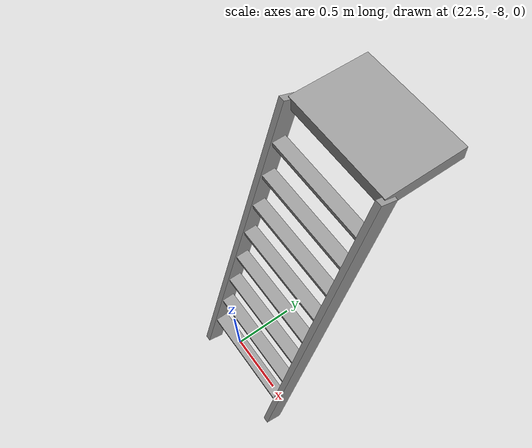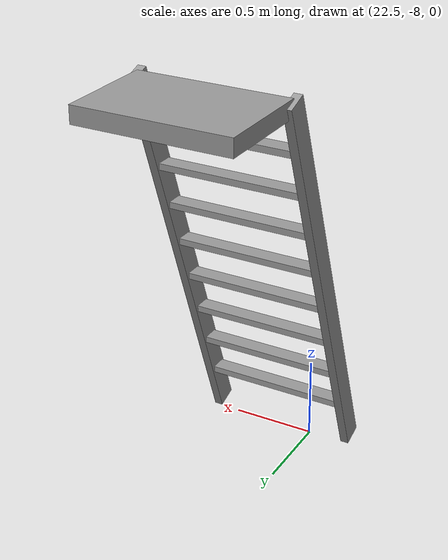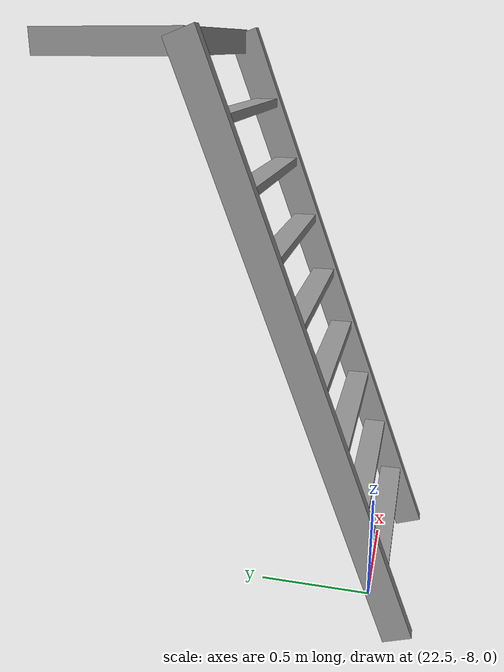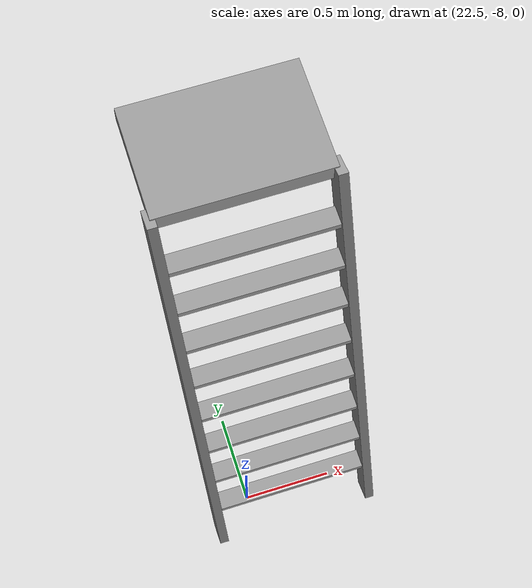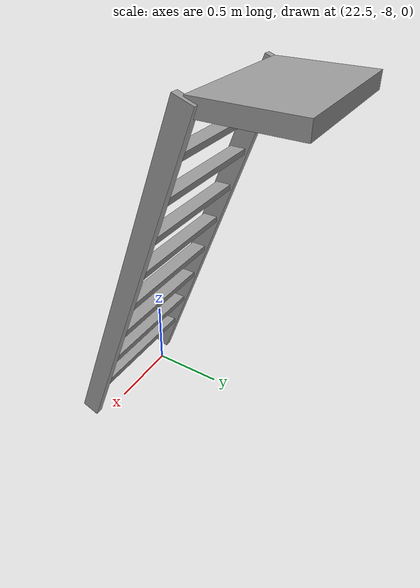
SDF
<sdf version="1.6">
 <world name="factory">
  <physics name="default_physics" default="0" type="ode">
   <max_step_size>0.001</max_step_size>
   <real_time_factor>1</real_time_factor>
   <real_time_update_rate>1000</real_time_update_rate>
  </physics>
  <gravity>0 0 -9.8</gravity>
  <magnetic_field>6e-06 2.3e-05 -4.2e-05</magnetic_field>
  <atmosphere type="adiabatic"/>
  <scene><ambient>0.4 0.4 0.4 1</ambient><background>0.7 0.7 0.7 1</background><shadows>1</shadows></scene>
  <spherical_coordinates>
   <surface_model>EARTH_WGS84</surface_model>
   <latitude_deg>0</latitude_deg>
   <longitude_deg>0</longitude_deg>
   <elevation>0</elevation>
   <heading_deg>0</heading_deg>
  </spherical_coordinates>
  <model name="ladder_75deg_0rails_0">
   <include><uri>model://ladder_75deg_0rails</uri></include>
   <static>1</static>
   <pose>22.7475 -8.13571 0 0 -0 0</pose>
  </model>
  <light name="sun" type="directional">
   <pose>0 0 10 0 -0 0</pose>
   <diffuse>0.8 0.8 0.8 1</diffuse>
   <specular>0.2 0.2 0.2 1</specular>
   <attenuation>
    <range>1000</range>
    <constant>0.9</constant>
    <linear>0.01</linear>
    <quadratic>0.001</quadratic>
   </attenuation>
   <direction>-0.5 0.1 -0.9</direction>
  </light>
  <light name="user_spot_light_0" type="spot">
   <pose>19.0102 -3.28175 1 0 -0 0</pose>
   <diffuse>0.5 0.5 0.5 1</diffuse>
   <specular>0.1 0.1 0.1 1</specular>
   <direction>0 0 -1</direction>
   <attenuation>
    <range>20</range>
    <constant>0.5</constant>
    <linear>0.01</linear>
    <quadratic>0.001</quadratic>
   </attenuation>
   <cast_shadows>0</cast_shadows>
   <spot><inner_angle>0.6</inner_angle><outer_angle>1</outer_angle><falloff>1</falloff></spot>
  </light>
  <light name="user_spot_light_0_clone" type="spot">
   <pose>26.8211 5.91503 7.17268 0 -0 0</pose>
   <diffuse>0.5 0.5 0.5 1</diffuse>
   <specular>0.1 0.1 0.1 1</specular>
   <direction>0 0 -1</direction>
   <attenuation>
    <range>20</range>
    <constant>0.5</constant>
    <linear>0.01</linear>
    <quadratic>0.001</quadratic>
   </attenuation>
   <cast_shadows>0</cast_shadows>
   <spot><inner_angle>0.6</inner_angle><outer_angle>1</outer_angle><falloff>1</falloff></spot>
  </light>
  <light name="user_spot_light_0_clone_clone" type="spot">
   <pose>-4.22523 -4.87712 7.17268 0 -0 0</pose>
   <diffuse>0.5 0.5 0.5 1</diffuse>
   <specular>0.1 0.1 0.1 1</specular>
   <direction>0 0 -1</direction>
   <attenuation>
    <range>20</range>
    <constant>0.5</constant>
    <linear>0.01</linear>
    <quadratic>0.001</quadratic>
   </attenuation>
   <cast_shadows>0</cast_shadows>
   <spot><inner_angle>0.6</inner_angle><outer_angle>1</outer_angle><falloff>1</falloff></spot>
  </light>
  <light name="user_spot_light_0_clone_clone_clone" type="spot">
   <pose>0.543716 1.56833 7.17268 0 -0 0</pose>
   <diffuse>0.5 0.5 0.5 1</diffuse>
   <specular>0.1 0.1 0.1 1</specular>
   <direction>0 0 -1</direction>
   <attenuation>
    <range>20</range>
    <constant>0.5</constant>
    <linear>0.01</linear>
    <quadratic>0.001</quadratic>
   </attenuation>
   <cast_shadows>0</cast_shadows>
   <spot><inner_angle>0.6</inner_angle><outer_angle>1</outer_angle><falloff>1</falloff></spot>
  </light>
  <light name="user_spot_light_0_clone_clone_clone_clone" type="spot">
   <pose>14.8134 7.31309 7.17268 0 -0 0</pose>
   <diffuse>0.5 0.5 0.5 1</diffuse>
   <specular>0.1 0.1 0.1 1</specular>
   <direction>0 0 -1</direction>
   <attenuation>
    <range>20</range>
    <constant>0.5</constant>
    <linear>0.01</linear>
    <quadratic>0.001</quadratic>
   </attenuation>
   <cast_shadows>0</cast_shadows>
   <spot><inner_angle>0.6</inner_angle><outer_angle>1</outer_angle><falloff>1</falloff></spot>
  </light>
  <light name="user_spot_light_0_clone_clone_clone_clone_clone" type="spot">
   <pose>4.47445 -6.80903 7.17268 0 -0 0</pose>
   <diffuse>0.5 0.5 0.5 1</diffuse>
   <specular>0.1 0.1 0.1 1</specular>
   <direction>0 0 -1</direction>
   <attenuation>
    <range>20</range>
    <constant>0.5</constant>
    <linear>0.01</linear>
    <quadratic>0.001</quadratic>
   </attenuation>
   <cast_shadows>0</cast_shadows>
   <spot><inner_angle>0.6</inner_angle><outer_angle>1</outer_angle><falloff>1</falloff></spot>
  </light>
 </world>
</sdf>

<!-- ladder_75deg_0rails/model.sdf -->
<sdf version="1.5">
  <model name= "ladder_70deg_0rails" >
    <static>true</static>
         <link name="step0" >
           <pose>0 0.09705872913765398 0.26666666666666666 0 0 0 </pose>
           <inertial>
             <mass> 9.7548192</mass>
             <inertia>
             <ixx> 0.009571241631672</ixx>
             <iyy> 0.6596303120915761</iyy>
             <izz> 0.666841521540096</izz>
             <ixy>0</ixy>
             <ixz>0</ixz>
             <iyz>0</iyz>
             </inertia>
           </inertial>

           <collision name="collision">
             <geometry>
              <box>
                <size>  0.9  0.1016  0.0381  </size>
              </box>
             </geometry>
           </collision>

          <visual name="visual">
            <geometry>
              <box>
                <size>  0.9  0.1016  0.0381  </size>
              </box>
            </geometry>
            <material>
              <script>
                <uri>file://media/materials/scripts/gazebo.material</uri>
                <name>Gazebo/Grey</name>
              </script>
            </material>
          </visual>
        </link>
         <link name="step1" >
           <pose>0 0.19411745827530796 0.5333333333333333 0 0 0 </pose>
           <inertial>
             <mass> 9.7548192</mass>
             <inertia>
             <ixx> 0.009571241631672</ixx>
             <iyy> 0.6596303120915761</iyy>
             <izz> 0.666841521540096</izz>
             <ixy>0</ixy>
             <ixz>0</ixz>
             <iyz>0</iyz>
             </inertia>
           </inertial>

           <collision name="collision">
             <geometry>
              <box>
                <size>  0.9  0.1016  0.0381  </size>
              </box>
             </geometry>
           </collision>

          <visual name="visual">
            <geometry>
              <box>
                <size>  0.9  0.1016  0.0381  </size>
              </box>
            </geometry>
            <material>
              <script>
                <uri>file://media/materials/scripts/gazebo.material</uri>
                <name>Gazebo/Grey</name>
              </script>
            </material>
          </visual>
        </link>
         <link name="step2" >
           <pose>0 0.2911761874129619 0.8 0 0 0 </pose>
           <inertial>
             <mass> 9.7548192</mass>
             <inertia>
             <ixx> 0.009571241631672</ixx>
             <iyy> 0.6596303120915761</iyy>
             <izz> 0.666841521540096</izz>
             <ixy>0</ixy>
             <ixz>0</ixz>
             <iyz>0</iyz>
             </inertia>
           </inertial>

           <collision name="collision">
             <geometry>
              <box>
                <size>  0.9  0.1016  0.0381  </size>
              </box>
             </geometry>
           </collision>

          <visual name="visual">
            <geometry>
              <box>
                <size>  0.9  0.1016  0.0381  </size>
              </box>
            </geometry>
            <material>
              <script>
                <uri>file://media/materials/scripts/gazebo.material</uri>
                <name>Gazebo/Grey</name>
              </script>
            </material>
          </visual>
        </link>
         <link name="step3" >
           <pose>0 0.3882349165506159 1.0666666666666667 0 0 0 </pose>
           <inertial>
             <mass> 9.7548192</mass>
             <inertia>
             <ixx> 0.009571241631672</ixx>
             <iyy> 0.6596303120915761</iyy>
             <izz> 0.666841521540096</izz>
             <ixy>0</ixy>
             <ixz>0</ixz>
             <iyz>0</iyz>
             </inertia>
           </inertial>

           <collision name="collision">
             <geometry>
              <box>
                <size>  0.9  0.1016  0.0381  </size>
              </box>
             </geometry>
           </collision>

          <visual name="visual">
            <geometry>
              <box>
                <size>  0.9  0.1016  0.0381  </size>
              </box>
            </geometry>
            <material>
              <script>
                <uri>file://media/materials/scripts/gazebo.material</uri>
                <name>Gazebo/Grey</name>
              </script>
            </material>
          </visual>
        </link>
         <link name="step4" >
           <pose>0 0.48529364568826994 1.3333333333333333 0 0 0 </pose>
           <inertial>
             <mass> 9.7548192</mass>
             <inertia>
             <ixx> 0.009571241631672</ixx>
             <iyy> 0.6596303120915761</iyy>
             <izz> 0.666841521540096</izz>
             <ixy>0</ixy>
             <ixz>0</ixz>
             <iyz>0</iyz>
             </inertia>
           </inertial>

           <collision name="collision">
             <geometry>
              <box>
                <size>  0.9  0.1016  0.0381  </size>
              </box>
             </geometry>
           </collision>

          <visual name="visual">
            <geometry>
              <box>
                <size>  0.9  0.1016  0.0381  </size>
              </box>
            </geometry>
            <material>
              <script>
                <uri>file://media/materials/scripts/gazebo.material</uri>
                <name>Gazebo/Grey</name>
              </script>
            </material>
          </visual>
        </link>
         <link name="step5" >
           <pose>0 0.5823523748259238 1.6 0 0 0 </pose>
           <inertial>
             <mass> 9.7548192</mass>
             <inertia>
             <ixx> 0.009571241631672</ixx>
             <iyy> 0.6596303120915761</iyy>
             <izz> 0.666841521540096</izz>
             <ixy>0</ixy>
             <ixz>0</ixz>
             <iyz>0</iyz>
             </inertia>
           </inertial>

           <collision name="collision">
             <geometry>
              <box>
                <size>  0.9  0.1016  0.0381  </size>
              </box>
             </geometry>
           </collision>

          <visual name="visual">
            <geometry>
              <box>
                <size>  0.9  0.1016  0.0381  </size>
              </box>
            </geometry>
            <material>
              <script>
                <uri>file://media/materials/scripts/gazebo.material</uri>
                <name>Gazebo/Grey</name>
              </script>
            </material>
          </visual>
        </link>
         <link name="step6" >
           <pose>0 0.6794111039635778 1.8666666666666667 0 0 0 </pose>
           <inertial>
             <mass> 9.7548192</mass>
             <inertia>
             <ixx> 0.009571241631672</ixx>
             <iyy> 0.6596303120915761</iyy>
             <izz> 0.666841521540096</izz>
             <ixy>0</ixy>
             <ixz>0</ixz>
             <iyz>0</iyz>
             </inertia>
           </inertial>

           <collision name="collision">
             <geometry>
              <box>
                <size>  0.9  0.1016  0.0381  </size>
              </box>
             </geometry>
           </collision>

          <visual name="visual">
            <geometry>
              <box>
                <size>  0.9  0.1016  0.0381  </size>
              </box>
            </geometry>
            <material>
              <script>
                <uri>file://media/materials/scripts/gazebo.material</uri>
                <name>Gazebo/Grey</name>
              </script>
            </material>
          </visual>
        </link>
         <link name="step7" >
           <pose>0 0.7764698331012319 2.1333333333333333 0 0 0 </pose>
           <inertial>
             <mass> 9.7548192</mass>
             <inertia>
             <ixx> 0.009571241631672</ixx>
             <iyy> 0.6596303120915761</iyy>
             <izz> 0.666841521540096</izz>
             <ixy>0</ixy>
             <ixz>0</ixz>
             <iyz>0</iyz>
             </inertia>
           </inertial>

           <collision name="collision">
             <geometry>
              <box>
                <size>  0.9  0.1016  0.0381  </size>
              </box>
             </geometry>
           </collision>

          <visual name="visual">
            <geometry>
              <box>
                <size>  0.9  0.1016  0.0381  </size>
              </box>
            </geometry>
            <material>
              <script>
                <uri>file://media/materials/scripts/gazebo.material</uri>
                <name>Gazebo/Grey</name>
              </script>
            </material>
          </visual>
        </link>
    <link name="landing">
      <pose>0 1.1735285622388858 2.4 0 0 0 </pose>
        <inertial>
          <mass> 57.607200000000006</mass>
          <inertia>
          <ixx> 1.735184598966</ixx>
          <iyy> 3.8954545989660008</iyy>
          <izz> 5.616702</izz>
          <ixy>0</ixy>
          <ixz>0</ixz>
          <iyz>0</iyz>
          </inertia>
        </inertial>

        <collision name="collision">
          <geometry>
           <box>
             <size> 0.9 0.6 0.1016</size>
           </box>
          </geometry>
        </collision>

        <visual name="visual">
          <geometry>
            <box>
             <size> 0.9 0.6 0.1016</size>
            </box>
          </geometry>
          <material>
            <script>
              <uri>file://media/materials/scripts/gazebo.material</uri>
              <name>Gazebo/Grey</name>
            </script>
          </material>
        </visual>
    </link>

      <link name="left_side_wall" >
        <pose>-0.45 0.43676428111944293 1.2 1.2217304763960306 0 0 </pose>
        <collision name="collision">
          <geometry>
            <box>
              <size> 0.0508  2.6340266539421893  0.13 </size>
            </box>
          </geometry>
        </collision>

        <visual name="visual">
          <geometry>
            <box>
              <size> 0.0508  2.6340266539421893  0.13 </size>
            </box>
          </geometry>
          <material>
            <script>
              <uri>file://media/materials/scripts/gazebo.material</uri>
              <name>Gazebo/Grey</name>
            </script>
          </material>
        </visual>

      </link>
      <link name="right_side_wall" >
        <pose>0.45 0.43676428111944293 1.2 1.2217304763960306 0 0 </pose>
        <collision name="collision">
          <geometry>
            <box>
              <size> 0.0508  2.6340266539421893  0.13 </size>
            </box>
          </geometry>
        </collision>

        <visual name="visual">
          <geometry>
            <box>
              <size> 0.0508  2.6340266539421893  0.13 </size>
            </box>
          </geometry>
          <material>
            <script>
              <uri>file://media/materials/scripts/gazebo.material</uri>
              <name>Gazebo/Grey</name>
            </script>
          </material>
        </visual>

      </link>

  </model>
</sdf>
